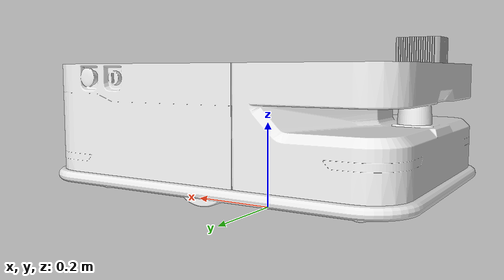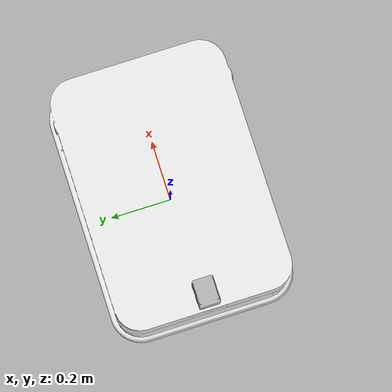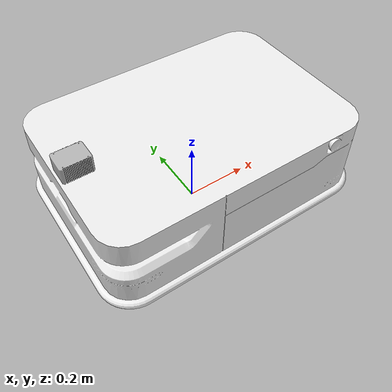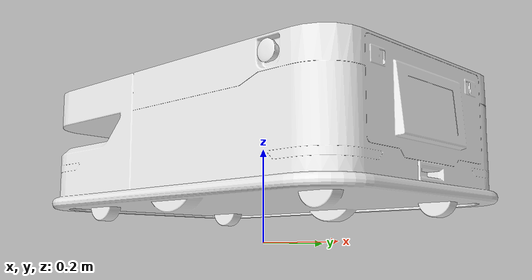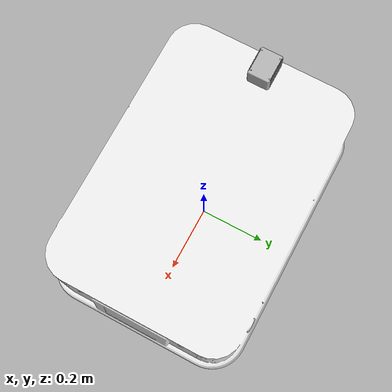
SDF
<sdf version='1.6'>
  <model name='iris_livox70'>
    <link name='link'>
      <pose frame=''>0 0 0 0 -0 0</pose>
      <inertial>
        <pose frame=''>-0.066667 0 0.10095 0 -0 0</pose>
        <mass>1.2</mass>
        <inertia>
          <ixx>0.535575</ixx>
          <ixy>6.98779e-07</ixy>
          <ixz>0.02038</ixz>
          <iyy>1.06224</iyy>
          <iyz>-2.70401e-08</iyz>
          <izz>1.04667</izz>
        </inertia>
      </inertial>
      <collision name='link_fixed_joint_lump__oasis_300_collision'>
        <pose frame=''>0 0 0.1 0 -0 1.57079</pose>
        <geometry>
          <mesh>
            <scale>1 1 1</scale>
            <uri>model://livox_mid40/meshes/standardrobots.STL</uri>
          </mesh>
        </geometry>
        <surface>
          <contact>
            <ode/>
          </contact>
          <friction>
            <ode/>
          </friction>
        </surface>
      </collision>
      <collision name='link_fixed_joint_lump__livox_base_collision_1'>
        <pose frame=''>-0.4 1e-06 0.3557 0 -0 3.14149</pose>
        <geometry>
          <mesh>
            <scale>1 1 1</scale>
            <uri>model://livox_mid40/meshes/livox_mid40.dae</uri>
          </mesh>
        </geometry>
      </collision>
      <visual name='link_fixed_joint_lump__oasis_300_visual'>
        <pose frame=''>0 0 0.1 0 -0 1.57079</pose>
        <geometry>
          <mesh>
            <scale>1 1 1</scale>
            <uri>model://livox_mid40/meshes/standardrobots.STL</uri>
          </mesh>
        </geometry>
        <material>
          <script>
            <name>Gazebo/White</name>
            <uri>file://media/materials/scripts/gazebo.material</uri>
          </script>
        </material>
      </visual>
      <visual name='link_fixed_joint_lump__livox_base_visual_1'>
        <pose frame=''>-0.4 1e-06 0.3557 0 -0 3.14149</pose>
        <geometry>
          <mesh>
            <scale>1 1 1</scale>
            <uri>model://livox_mid40/meshes/livox_mid40.dae</uri>
          </mesh>
        </geometry>
      </visual>
      <velocity_decay/>
      <gravity>1</gravity>
      <velocity_decay/>
      <sensor name='laser_livox' type='ray'>
        <visualize>1</visualize>
        <update_rate>10</update_rate>
        <plugin name='gazebo_ros_laser_controller' filename='liblivox_laser_simulation.so'>
          <ray>
            <scan>
              <horizontal>
                <samples>100</samples>
                <resolution>1</resolution>
                <min_angle>-0.614355377778</min_angle>
                <max_angle>0.614355377778</max_angle>
              </horizontal>
              <vertical>
                <samples>50</samples>
                <resolution>1</resolution>
                <min_angle>-0.614355377778</min_angle>
                <max_angle>0.614355377778</max_angle>
              </vertical>
            </scan>
            <range>
              <min>0.1</min>
              <max>200.0</max>
              <resolution>0.002</resolution>
            </range>
            <noise>
              <type>gaussian</type>
              <mean>0.0</mean>
              <stddev>0.01</stddev>
            </noise>
          </ray>
          <visualize>1</visualize>
          <samples>10000</samples>
          <downsample>1</downsample>
          <csv_file_name>model://livox_mid40/scan_mode/mid70.csv</csv_file_name>
           <robotNamespace></robotNamespace>
        <topicName>/livox</topicName>
        <frameName>laser_3d</frameName>
        </plugin>
        <pose frame=''>-0.4 1e-06 0.3557 0 -0 3.14149</pose>
      </sensor>
    </link>
  </model>
</sdf>
